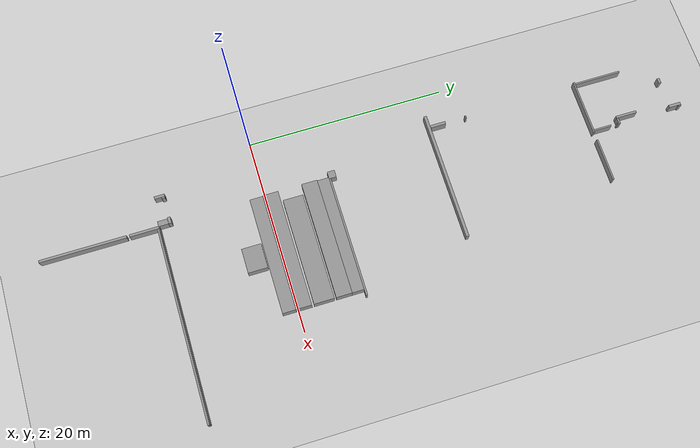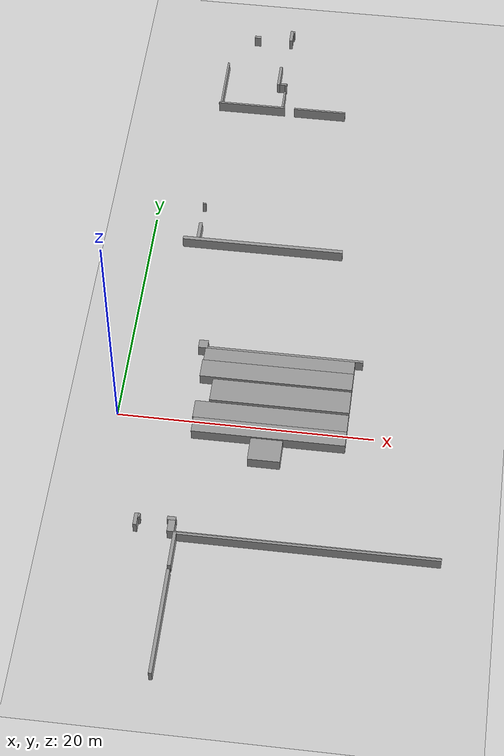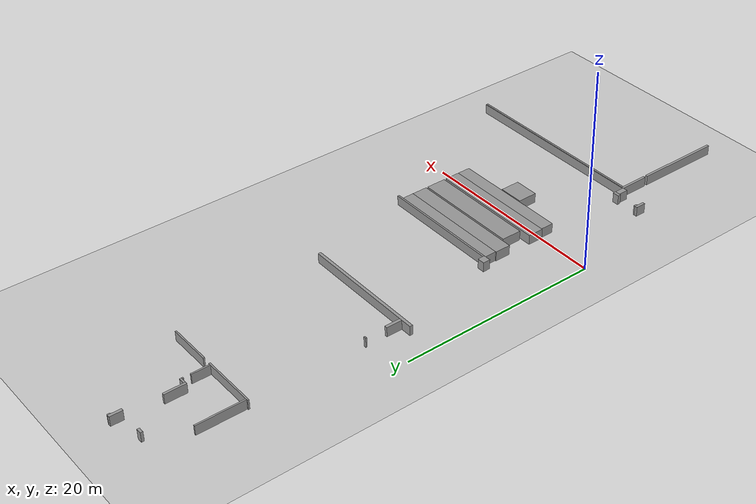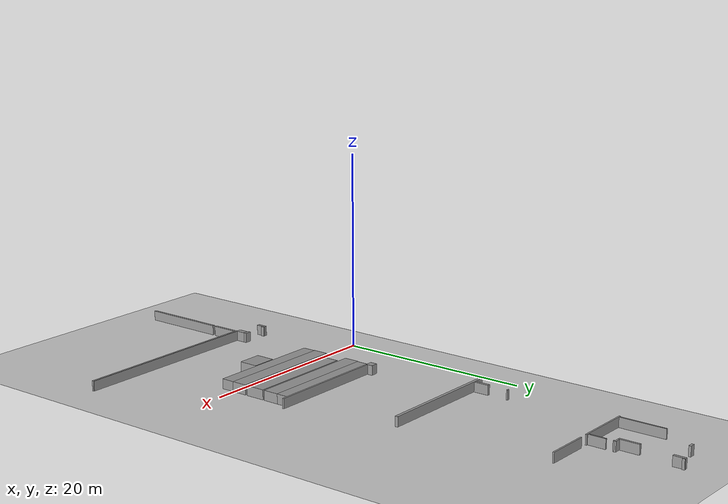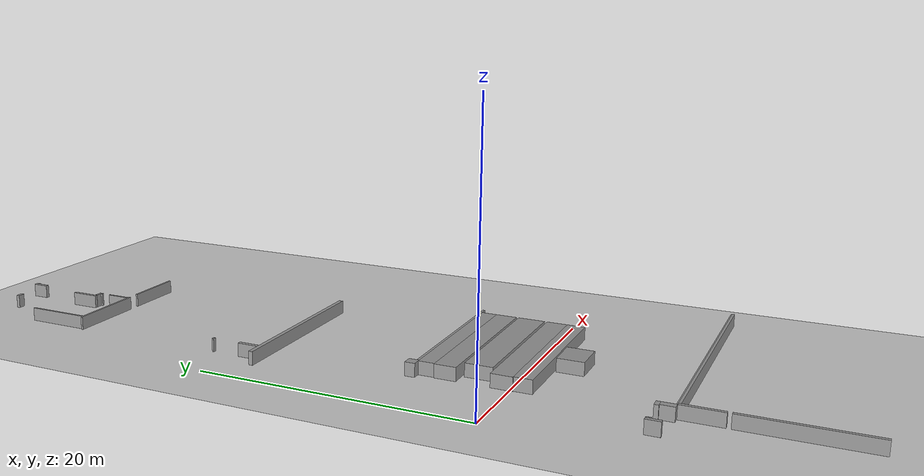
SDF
<sdf version="1.4">
 <world name="default">
  <model name="ground_plane">
   <static>1</static>
   <link name="link">
    <collision name="collision">
     <geometry><plane><normal>0 0 1</normal><size>100 100</size></plane></geometry>
     <surface><friction><ode><mu>100</mu><mu2>50</mu2></ode></friction></surface>
    </collision>
    <visual name="visual">
     <cast_shadows>0</cast_shadows>
     <geometry><plane><normal>0 0 1</normal><size>100 100</size></plane></geometry>
     <material>
      <script><uri>file://media/materials/scripts/gazebo.material</uri><name>Gazebo/Grey</name></script>
     </material>
    </visual>
    <velocity_decay><linear>0</linear><angular>0</angular></velocity_decay>
   </link>
  </model>
  <model name="walls">
   <static>1</static>
   <link name="Wall_58">
    <collision name="Wall_58_Collision">
     <geometry><box><size>0.30638 13.2255 1</size></box></geometry>
     <pose>40.366 -16.1617 0.5 0 -0 0</pose>
    </collision>
    <visual name="Wall_58_Visual">
     <geometry><box><size>0.30638 13.2255 1</size></box></geometry>
     <material>
      <script><uri>file://media/materials/scripts/gazebo.material</uri><name>Gazebo/Grey</name></script>
     </material>
     <pose>40.366 -16.1617 0.5 0 -0 0</pose>
    </visual>
    <velocity_decay><linear>0</linear><angular>0</angular></velocity_decay>
   </link>
   <link name="Wall_59">
    <collision name="Wall_59_Collision">
     <geometry><box><size>1.02128 0.28085 1</size></box></geometry>
     <pose>12.8681 -10.0468 0.5 0 -0 0</pose>
    </collision>
    <visual name="Wall_59_Visual">
     <geometry><box><size>1.02128 0.28085 1</size></box></geometry>
     <material>
      <script><uri>file://media/materials/scripts/gazebo.material</uri><name>Gazebo/Grey</name></script>
     </material>
     <pose>12.8681 -10.0468 0.5 0 -0 0</pose>
    </visual>
    <velocity_decay><linear>0</linear><angular>0</angular></velocity_decay>
   </link>
   <link name="Wall_60">
    <collision name="Wall_60_Collision">
     <geometry><box><size>0.33191 0.15319 1</size></box></geometry>
     <pose>13.2128 -10.2638 0.5 0 -0 0</pose>
    </collision>
    <visual name="Wall_60_Visual">
     <geometry><box><size>0.33191 0.15319 1</size></box></geometry>
     <material>
      <script><uri>file://media/materials/scripts/gazebo.material</uri><name>Gazebo/Grey</name></script>
     </material>
     <pose>13.2128 -10.2638 0.5 0 -0 0</pose>
    </visual>
    <velocity_decay><linear>0</linear><angular>0</angular></velocity_decay>
   </link>
   <link name="Wall_61">
    <collision name="Wall_61_Collision">
     <geometry><box><size>0.15319 5.74468 1</size></box></geometry>
     <pose>55.966 -13.2894 0.5 0 -0 0</pose>
    </collision>
    <visual name="Wall_61_Visual">
     <geometry><box><size>0.15319 5.74468 1</size></box></geometry>
     <material>
      <script><uri>file://media/materials/scripts/gazebo.material</uri><name>Gazebo/Grey</name></script>
     </material>
     <pose>55.966 -13.2894 0.5 0 -0 0</pose>
    </visual>
    <velocity_decay><linear>0</linear><angular>0</angular></velocity_decay>
   </link>
   <link name="Wall_62">
    <collision name="Wall_62_Collision">
     <geometry><box><size>4.77447 0.15319 1</size></box></geometry>
     <pose>58.4298 -10.6213 0.5 0 -0 0</pose>
    </collision>
    <visual name="Wall_62_Visual">
     <geometry><box><size>4.77447 0.15319 1</size></box></geometry>
     <material>
      <script><uri>file://media/materials/scripts/gazebo.material</uri><name>Gazebo/Grey</name></script>
     </material>
     <pose>58.4298 -10.6213 0.5 0 -0 0</pose>
    </visual>
    <velocity_decay><linear>0</linear><angular>0</angular></velocity_decay>
   </link>
   <link name="Wall_63">
    <collision name="Wall_63_Collision">
     <geometry><box><size>1.58298 0.28085 1</size></box></geometry>
     <pose>41.3106 -10.7872 0.5 0 -0 0</pose>
    </collision>
    <visual name="Wall_63_Visual">
     <geometry><box><size>1.58298 0.28085 1</size></box></geometry>
     <material>
      <script><uri>file://media/materials/scripts/gazebo.material</uri><name>Gazebo/Grey</name></script>
     </material>
     <pose>41.3106 -10.7872 0.5 0 -0 0</pose>
    </visual>
    <velocity_decay><linear>0</linear><angular>0</angular></velocity_decay>
   </link>
   <link name="Wall_64">
    <collision name="Wall_64_Collision">
     <geometry><box><size>0.12766 0.28085 1</size></box></geometry>
     <pose>44.234 -10.7872 0.5 0 -0 0</pose>
    </collision>
    <visual name="Wall_64_Visual">
     <geometry><box><size>0.12766 0.28085 1</size></box></geometry>
     <material>
      <script><uri>file://media/materials/scripts/gazebo.material</uri><name>Gazebo/Grey</name></script>
     </material>
     <pose>44.234 -10.7872 0.5 0 -0 0</pose>
    </visual>
    <velocity_decay><linear>0</linear><angular>0</angular></velocity_decay>
   </link>
   <link name="Wall_65">
    <collision name="Wall_65_Collision">
     <geometry><box><size>0.30638 0.66383 1</size></box></geometry>
     <pose>13.2255 -12.7149 0.5 0 -0 0</pose>
    </collision>
    <visual name="Wall_65_Visual">
     <geometry><box><size>0.30638 0.66383 1</size></box></geometry>
     <material>
      <script><uri>file://media/materials/scripts/gazebo.material</uri><name>Gazebo/Grey</name></script>
     </material>
     <pose>13.2255 -12.7149 0.5 0 -0 0</pose>
    </visual>
    <velocity_decay><linear>0</linear><angular>0</angular></velocity_decay>
   </link>
   <link name="Wall_66">
    <collision name="Wall_66_Collision">
     <geometry><box><size>0.74043 0.74043 1</size></box></geometry>
     <pose>29.6298 -12.7787 0.5 0 -0 0</pose>
    </collision>
    <visual name="Wall_66_Visual">
     <geometry><box><size>0.74043 0.74043 1</size></box></geometry>
     <material>
      <script><uri>file://media/materials/scripts/gazebo.material</uri><name>Gazebo/Grey</name></script>
     </material>
     <pose>29.6298 -12.7787 0.5 0 -0 0</pose>
    </visual>
    <velocity_decay><linear>0</linear><angular>0</angular></velocity_decay>
   </link>
   <link name="Wall_67">
    <collision name="Wall_67_Collision">
     <geometry><box><size>0.99574 0.53617 1</size></box></geometry>
     <pose>12.5745 -12.7787 0.5 0 -0 0</pose>
    </collision>
    <visual name="Wall_67_Visual">
     <geometry><box><size>0.99574 0.53617 1</size></box></geometry>
     <material>
      <script><uri>file://media/materials/scripts/gazebo.material</uri><name>Gazebo/Grey</name></script>
     </material>
     <pose>12.5745 -12.7787 0.5 0 -0 0</pose>
    </visual>
    <velocity_decay><linear>0</linear><angular>0</angular></velocity_decay>
   </link>
   <link name="Wall_68">
    <collision name="Wall_68_Collision">
     <geometry><box><size>0.25532 0.53617 1</size></box></geometry>
     <pose>64.3149 -12.7787 0.5 0 -0 0</pose>
    </collision>
    <visual name="Wall_68_Visual">
     <geometry><box><size>0.25532 0.53617 1</size></box></geometry>
     <material>
      <script><uri>file://media/materials/scripts/gazebo.material</uri><name>Gazebo/Grey</name></script>
     </material>
     <pose>64.3149 -12.7787 0.5 0 -0 0</pose>
    </visual>
    <velocity_decay><linear>0</linear><angular>0</angular></velocity_decay>
   </link>
   <link name="Wall_69">
    <collision name="Wall_69_Collision">
     <geometry><box><size>1.55745 11.9745 1</size></box></geometry>
     <pose>23.3234 -18.9064 0.5 0 -0 0</pose>
    </collision>
    <visual name="Wall_69_Visual">
     <geometry><box><size>1.55745 11.9745 1</size></box></geometry>
     <material>
      <script><uri>file://media/materials/scripts/gazebo.material</uri><name>Gazebo/Grey</name></script>
     </material>
     <pose>23.3234 -18.9064 0.5 0 -0 0</pose>
    </visual>
    <velocity_decay><linear>0</linear><angular>0</angular></velocity_decay>
   </link>
   <link name="Wall_70">
    <collision name="Wall_70_Collision">
     <geometry><box><size>1.58298 11.9745 1</size></box></geometry>
     <pose>27.2936 -18.9064 0.5 0 -0 0</pose>
    </collision>
    <visual name="Wall_70_Visual">
     <geometry><box><size>1.58298 11.9745 1</size></box></geometry>
     <material>
      <script><uri>file://media/materials/scripts/gazebo.material</uri><name>Gazebo/Grey</name></script>
     </material>
     <pose>27.2936 -18.9064 0.5 0 -0 0</pose>
    </visual>
    <velocity_decay><linear>0</linear><angular>0</angular></velocity_decay>
   </link>
   <link name="Wall_71">
    <collision name="Wall_71_Collision">
     <geometry><box><size>8.60426 0.25532 1</size></box></geometry>
     <pose>4.58298 -13.1234 0.5 0 -0 0</pose>
    </collision>
    <visual name="Wall_71_Visual">
     <geometry><box><size>8.60426 0.25532 1</size></box></geometry>
     <material>
      <script><uri>file://media/materials/scripts/gazebo.material</uri><name>Gazebo/Grey</name></script>
     </material>
     <pose>4.58298 -13.1234 0.5 0 -0 0</pose>
    </visual>
    <velocity_decay><linear>0</linear><angular>0</angular></velocity_decay>
   </link>
   <link name="Wall_72">
    <collision name="Wall_72_Collision">
     <geometry><box><size>2.91064 0.25532 1</size></box></geometry>
     <pose>10.6213 -13.1234 0.5 0 -0 0</pose>
    </collision>
    <visual name="Wall_72_Visual">
     <geometry><box><size>2.91064 0.25532 1</size></box></geometry>
     <material>
      <script><uri>file://media/materials/scripts/gazebo.material</uri><name>Gazebo/Grey</name></script>
     </material>
     <pose>10.6213 -13.1234 0.5 0 -0 0</pose>
    </visual>
    <velocity_decay><linear>0</linear><angular>0</angular></velocity_decay>
   </link>
   <link name="Wall_73">
    <collision name="Wall_73_Collision">
     <geometry><box><size>1.32766 11.8979 1</size></box></geometry>
     <pose>21.8808 -18.9447 0.5 0 -0 0</pose>
    </collision>
    <visual name="Wall_73_Visual">
     <geometry><box><size>1.32766 11.8979 1</size></box></geometry>
     <material>
      <script><uri>file://media/materials/scripts/gazebo.material</uri><name>Gazebo/Grey</name></script>
     </material>
     <pose>21.8808 -18.9447 0.5 0 -0 0</pose>
    </visual>
    <velocity_decay><linear>0</linear><angular>0</angular></velocity_decay>
   </link>
   <link name="Wall_74">
    <collision name="Wall_74_Collision">
     <geometry><box><size>1.17447 11.8979 1</size></box></geometry>
     <pose>28.6723 -18.9447 0.5 0 -0 0</pose>
    </collision>
    <visual name="Wall_74_Visual">
     <geometry><box><size>1.17447 11.8979 1</size></box></geometry>
     <material>
      <script><uri>file://media/materials/scripts/gazebo.material</uri><name>Gazebo/Grey</name></script>
     </material>
     <pose>28.6723 -18.9447 0.5 0 -0 0</pose>
    </visual>
    <velocity_decay><linear>0</linear><angular>0</angular></velocity_decay>
   </link>
   <link name="Wall_75">
    <collision name="Wall_75_Collision">
     <geometry><box><size>0.0766 19.8894 1</size></box></geometry>
     <pose>12.1149 -22.9915 0.5 0 -0 0</pose>
    </collision>
    <visual name="Wall_75_Visual">
     <geometry><box><size>0.0766 19.8894 1</size></box></geometry>
     <material>
      <script><uri>file://media/materials/scripts/gazebo.material</uri><name>Gazebo/Grey</name></script>
     </material>
     <pose>12.1149 -22.9915 0.5 0 -0 0</pose>
    </visual>
    <velocity_decay><linear>0</linear><angular>0</angular></velocity_decay>
   </link>
   <link name="Wall_76">
    <collision name="Wall_76_Collision">
     <geometry><box><size>0.17872 12.3575 1</size></box></geometry>
     <pose>29.3489 -19.3277 0.5 0 -0 0</pose>
    </collision>
    <visual name="Wall_76_Visual">
     <geometry><box><size>0.17872 12.3575 1</size></box></geometry>
     <material>
      <script><uri>file://media/materials/scripts/gazebo.material</uri><name>Gazebo/Grey</name></script>
     </material>
     <pose>29.3489 -19.3277 0.5 0 -0 0</pose>
    </visual>
    <velocity_decay><linear>0</linear><angular>0</angular></velocity_decay>
   </link>
   <link name="Wall_77">
    <collision name="Wall_77_Collision">
     <geometry><box><size>0.17872 19.6851 1</size></box></geometry>
     <pose>11.9872 -23.0936 0.5 0 -0 0</pose>
    </collision>
    <visual name="Wall_77_Visual">
     <geometry><box><size>0.17872 19.6851 1</size></box></geometry>
     <material>
      <script><uri>file://media/materials/scripts/gazebo.material</uri><name>Gazebo/Grey</name></script>
     </material>
     <pose>11.9872 -23.0936 0.5 0 -0 0</pose>
    </visual>
    <velocity_decay><linear>0</linear><angular>0</angular></velocity_decay>
   </link>
   <link name="Wall_78">
    <collision name="Wall_78_Collision">
     <geometry><box><size>2.01702 10.9021 1</size></box></geometry>
     <pose>25.3149 -19.4426 0.5 0 -0 0</pose>
    </collision>
    <visual name="Wall_78_Visual">
     <geometry><box><size>2.01702 10.9021 1</size></box></geometry>
     <material>
      <script><uri>file://media/materials/scripts/gazebo.material</uri><name>Gazebo/Grey</name></script>
     </material>
     <pose>25.3149 -19.4426 0.5 0 -0 0</pose>
    </visual>
    <velocity_decay><linear>0</linear><angular>0</angular></velocity_decay>
   </link>
   <link name="Wall_79">
    <collision name="Wall_79_Collision">
     <geometry><box><size>2.14468 0.22979 1</size></box></geometry>
     <pose>59.7447 -15.2808 0.5 0 -0 0</pose>
    </collision>
    <visual name="Wall_79_Visual">
     <geometry><box><size>2.14468 0.22979 1</size></box></geometry>
     <material>
      <script><uri>file://media/materials/scripts/gazebo.material</uri><name>Gazebo/Grey</name></script>
     </material>
     <pose>59.7447 -15.2808 0.5 0 -0 0</pose>
    </visual>
    <velocity_decay><linear>0</linear><angular>0</angular></velocity_decay>
   </link>
   <link name="Wall_80">
    <collision name="Wall_80_Collision">
     <geometry><box><size>0.17872 0.6383 1</size></box></geometry>
     <pose>58.7617 -15.7149 0.5 0 -0 0</pose>
    </collision>
    <visual name="Wall_80_Visual">
     <geometry><box><size>0.17872 0.6383 1</size></box></geometry>
     <material>
      <script><uri>file://media/materials/scripts/gazebo.material</uri><name>Gazebo/Grey</name></script>
     </material>
     <pose>58.7617 -15.7149 0.5 0 -0 0</pose>
    </visual>
    <velocity_decay><linear>0</linear><angular>0</angular></velocity_decay>
   </link>
   <link name="Wall_81">
    <collision name="Wall_81_Collision">
     <geometry><box><size>1.22553 0.28085 1</size></box></geometry>
     <pose>64.8 -15.7404 0.5 0 -0 0</pose>
    </collision>
    <visual name="Wall_81_Visual">
     <geometry><box><size>1.22553 0.28085 1</size></box></geometry>
     <material>
      <script><uri>file://media/materials/scripts/gazebo.material</uri><name>Gazebo/Grey</name></script>
     </material>
     <pose>64.8 -15.7404 0.5 0 -0 0</pose>
    </visual>
    <velocity_decay><linear>0</linear><angular>0</angular></velocity_decay>
   </link>
   <link name="Wall_82">
    <collision name="Wall_82_Collision">
     <geometry><box><size>1.81277 0.15319 1</size></box></geometry>
     <pose>56.9489 -15.9574 0.5 0 -0 0</pose>
    </collision>
    <visual name="Wall_82_Visual">
     <geometry><box><size>1.81277 0.15319 1</size></box></geometry>
     <material>
      <script><uri>file://media/materials/scripts/gazebo.material</uri><name>Gazebo/Grey</name></script>
     </material>
     <pose>56.9489 -15.9574 0.5 0 -0 0</pose>
    </visual>
    <velocity_decay><linear>0</linear><angular>0</angular></velocity_decay>
   </link>
   <link name="Wall_83">
    <collision name="Wall_83_Collision">
     <geometry><box><size>0.12766 0.15319 1</size></box></geometry>
     <pose>58.6085 -15.9574 0.5 0 -0 0</pose>
    </collision>
    <visual name="Wall_83_Visual">
     <geometry><box><size>0.12766 0.15319 1</size></box></geometry>
     <material>
      <script><uri>file://media/materials/scripts/gazebo.material</uri><name>Gazebo/Grey</name></script>
     </material>
     <pose>58.6085 -15.9574 0.5 0 -0 0</pose>
    </visual>
    <velocity_decay><linear>0</linear><angular>0</angular></velocity_decay>
   </link>
   <link name="Wall_84">
    <collision name="Wall_84_Collision">
     <geometry><box><size>0.28085 0.10213 1</size></box></geometry>
     <pose>65.2723 -15.9319 0.5 0 -0 0</pose>
    </collision>
    <visual name="Wall_84_Visual">
     <geometry><box><size>0.28085 0.10213 1</size></box></geometry>
     <material>
      <script><uri>file://media/materials/scripts/gazebo.material</uri><name>Gazebo/Grey</name></script>
     </material>
     <pose>65.2723 -15.9319 0.5 0 -0 0</pose>
    </visual>
    <velocity_decay><linear>0</linear><angular>0</angular></velocity_decay>
   </link>
   <link name="Wall_85">
    <collision name="Wall_85_Collision">
     <geometry><box><size>0.15319 4.41702 1</size></box></geometry>
     <pose>55.966 -19.2128 0.5 0 -0 0</pose>
    </collision>
    <visual name="Wall_85_Visual">
     <geometry><box><size>0.15319 4.41702 1</size></box></geometry>
     <material>
      <script><uri>file://media/materials/scripts/gazebo.material</uri><name>Gazebo/Grey</name></script>
     </material>
     <pose>55.966 -19.2128 0.5 0 -0 0</pose>
    </visual>
    <velocity_decay><linear>0</linear><angular>0</angular></velocity_decay>
   </link>
   <link name="Wall_86">
    <collision name="Wall_86_Collision">
     <geometry><box><size>1.96596 2.50213 1</size></box></geometry>
     <pose>20.1319 -18.8681 0.5 0 -0 0</pose>
    </collision>
    <visual name="Wall_86_Visual">
     <geometry><box><size>1.96596 2.50213 1</size></box></geometry>
     <material>
      <script><uri>file://media/materials/scripts/gazebo.material</uri><name>Gazebo/Grey</name></script>
     </material>
     <pose>20.1319 -18.8681 0.5 0 -0 0</pose>
    </visual>
    <velocity_decay><linear>0</linear><angular>0</angular></velocity_decay>
   </link>
   <pose>-7 -22.75 0 0 -0 1.5708</pose>
  </model>
 </world>
</sdf>
